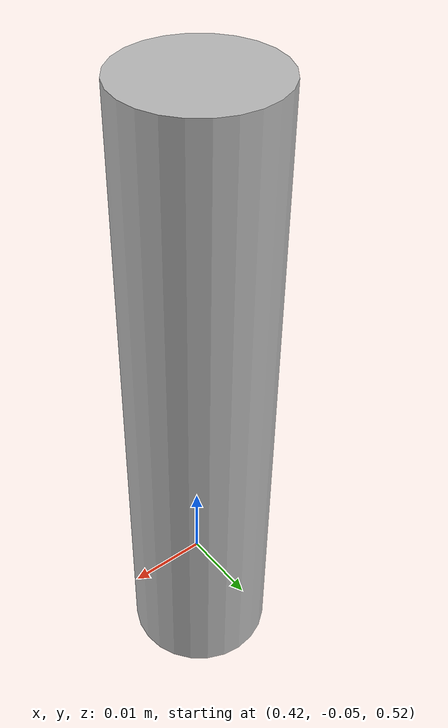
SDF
<?xml version='1.0'?>
<sdf version='1.7'>
  <model name='beer_resize_teste01'>
    <link name='link'>
      <pose>0.427294 -0.039792 0.558507 0 -0 0</pose>
      <inertial>
        <mass>0.00248086</mass>
        <inertia>
          <ixx>1.06685e-06</ixx>
          <ixy>0</ixy>
          <ixz>0</ixz>
          <iyy>1.06685e-06</iyy>
          <iyz>0</iyz>
          <izz>7.89911e-08</izz>
        </inertia>
        <pose>0 0 0 0 -0 0</pose>
      </inertial>
      <self_collide>0</self_collide>
      <enable_wind>0</enable_wind>
      <kinematic>0</kinematic>
      <visual name='visual'>
        <geometry>
          <cylinder>
            <radius>0.00797971</radius>
            <length>0.0704936</length>
          </cylinder>
        </geometry>
        <material>
          <script>
            <uri>model://beer/materials/scripts</uri>
            <uri>model://beer/materials/textures</uri>
            <name>Beer/Diffuse</name>
          </script>
          <shader type='pixel'/>
        </material>
        <pose>0 0 0 0 -0 0</pose>
        <transparency>0</transparency>
        <cast_shadows>1</cast_shadows>
      </visual>
      <collision name='collision'>
        <laser_retro>0</laser_retro>
        <max_contacts>10</max_contacts>
        <pose>0 0 0 0 -0 0</pose>
        <geometry>
          <cylinder>
            <radius>0.00798</radius>
            <length>0.070494</length>
          </cylinder>
        </geometry>
        <surface>
          <friction>
            <ode>
              <mu>1</mu>
              <mu2>1</mu2>
              <fdir1>0 0 0</fdir1>
              <slip1>0</slip1>
              <slip2>0</slip2>
            </ode>
            <torsional>
              <coefficient>1</coefficient>
              <patch_radius>0</patch_radius>
              <surface_radius>0</surface_radius>
              <use_patch_radius>1</use_patch_radius>
              <ode>
                <slip>0</slip>
              </ode>
            </torsional>
          </friction>
          <bounce>
            <restitution_coefficient>0</restitution_coefficient>
            <threshold>1e+06</threshold>
          </bounce>
          <contact>
            <collide_without_contact>0</collide_without_contact>
            <collide_without_contact_bitmask>1</collide_without_contact_bitmask>
            <collide_bitmask>1</collide_bitmask>
            <ode>
              <soft_cfm>0</soft_cfm>
              <soft_erp>0.2</soft_erp>
              <kp>1e+13</kp>
              <kd>1</kd>
              <max_vel>0.01</max_vel>
              <min_depth>0</min_depth>
            </ode>
            <bullet>
              <split_impulse>1</split_impulse>
              <split_impulse_penetration_threshold>-0.01</split_impulse_penetration_threshold>
              <soft_cfm>0</soft_cfm>
              <soft_erp>0.2</soft_erp>
              <kp>1e+13</kp>
              <kd>1</kd>
            </bullet>
          </contact>
        </surface>
      </collision>
    </link>
    <static>0</static>
    <allow_auto_disable>1</allow_auto_disable>
  </model>
</sdf>
